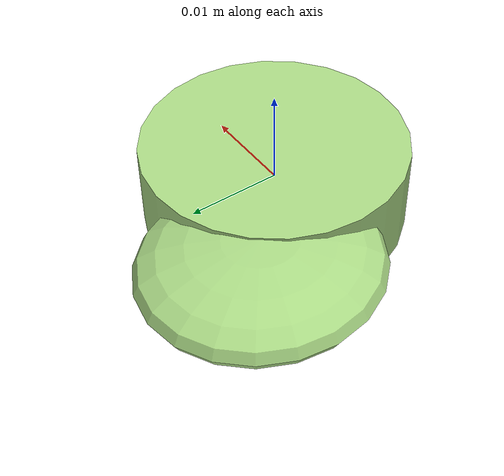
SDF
<?xml version="1.0" ?>
<!-- |    This document was autogenerated by xmacro from data/veggie_template/veggie_base.sdf.xacro  | -->
<!-- |    EDITING THIS FILE BY HAND IS NOT RECOMMENDED                                               | -->
<sdf version="1.8">
	<!-- Parameters -->
	<!-- Base -->
	<!-- Joint 0 -->
	<!-- Link 1 -->
	<!-- Joint 1 -->
	<!-- Link 2 -->
	<!-- Primitives -->
	<!-- All dimensions are half -->
	<!-- Object -->
	<model name="veggie">
		<!-- link0 -->
		<link name="link0">
			<inertial>
				<mass>0.005627143390762297</mass>
				<inertia>
					<ixx>3.1321052542285307e-07</ixx>
					<ixy>0</ixy>
					<ixz>0</ixz>
					<iyy>3.1321052542285307e-07</iyy>
					<iyz>0</iyz>
					<izz>5.467373737147191e-07</izz>
				</inertia>
			</inertial>
			<visual name="link0_visual">
				<pose>0 0 0 0 0 0</pose>
				<geometry>
					<cylinder>
						<radius>0.013939923421415371</radius>
						<length>0.00921756731178831</length>
					</cylinder>
				</geometry>
				<material>
					<ambient>0.659 0.839 0.514 1</ambient>
					<diffuse>0.659 0.839 0.514 1</diffuse>
					<specular>0 0 0 0</specular>
					<emissive>0 0 0 1</emissive>
				</material>
			</visual>
			<collision name="link0_collision">
				<pose>0 0 0 0 0 0 </pose>
				<geometry>
					<cylinder>
						<radius>0.013939923421415371</radius>
						<length>0.00921756731178831</length>
					</cylinder>
				</geometry>
			</collision>
		</link>
		<!-- link1 -->
		<joint name="joint0" type="fixed">
			<pose relative_to="link0">-0.010305487378637722 0.008903745773659532 0.0008575651630310981 0.0 0.0 0.0</pose>
			<parent>link0</parent>
			<child>link1</child>
		</joint>
		<link name="link1">
			<pose relative_to="joint0">0 0 0 0 0 0</pose>
			<inertial>
				<mass>0.0021841069973913252</mass>
				<inertia>
					<ixx>7.308259121086865e-08</ixx>
					<ixy>0</ixy>
					<ixz>0</ixz>
					<iyy>6.56807954558092e-08</iyy>
					<iyz>0</iyz>
					<izz>1.275894935188782e-07</izz>
				</inertia>
			</inertial>
			<visual name="link1_visual">
				<pose>0 0 0 0 0 0</pose>
				<geometry>
					<ellipsoid>
						<radii>0.01172905593246018 0.012430423404873346 0.0035763112283649237</radii>
					</ellipsoid>
				</geometry>
				<material>
					<ambient>0.659 0.839 0.514 1</ambient>
					<diffuse>0.659 0.839 0.514 1</diffuse>
					<specular>0 0 0 0</specular>
					<emissive>0 0 0 1</emissive>
				</material>
			</visual>
			<collision name="link1_collision">
				<pose>0 0 0 0 0 0 </pose>
				<geometry>
					<ellipsoid>
						<radii>0.01172905593246018 0.012430423404873346 0.0035763112283649237</radii>
					</ellipsoid>
				</geometry>
			</collision>
		</link>
		<!-- link2 -->
	</model>
</sdf>
